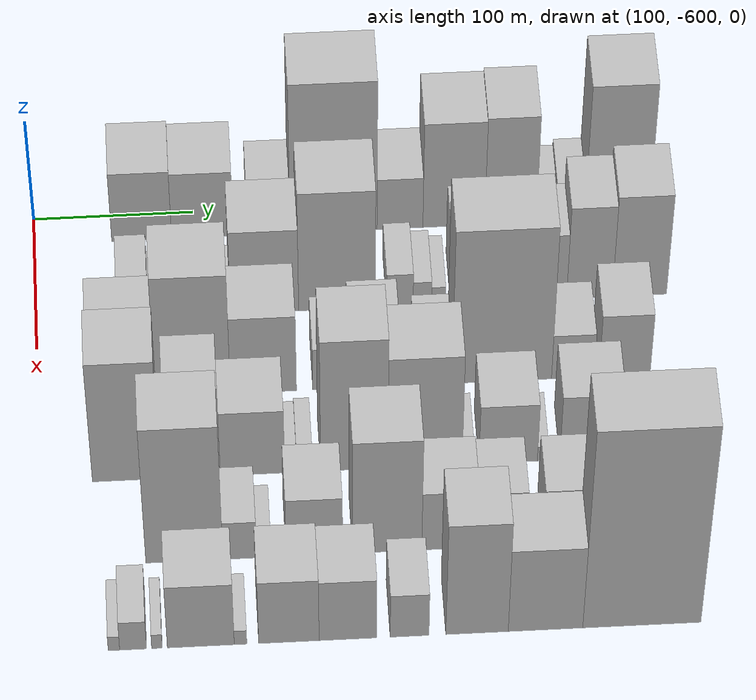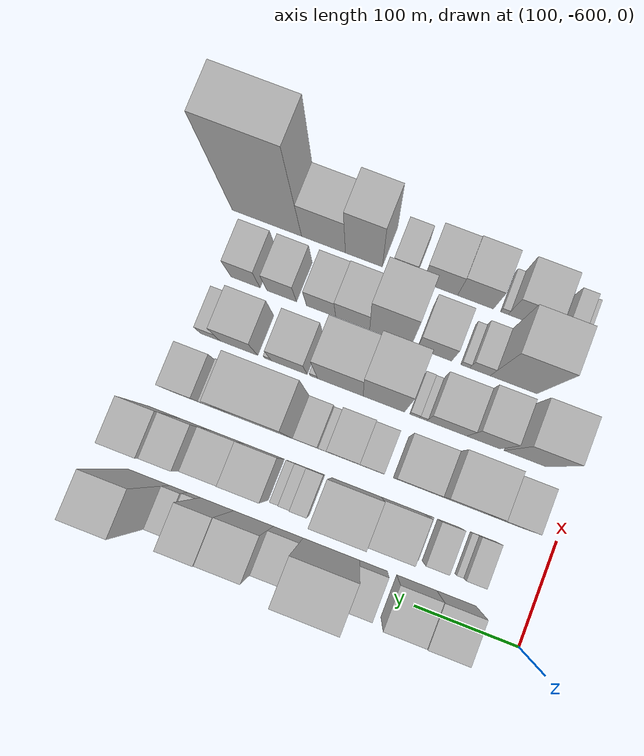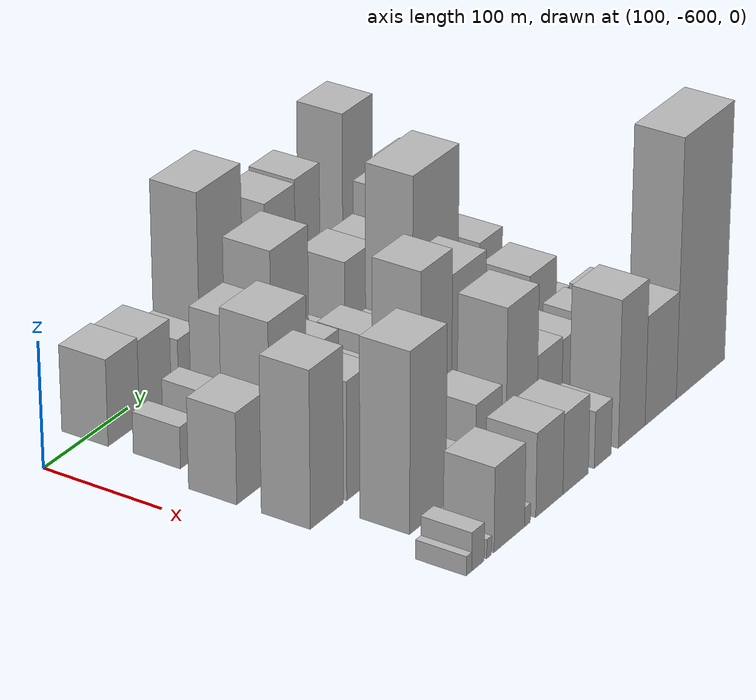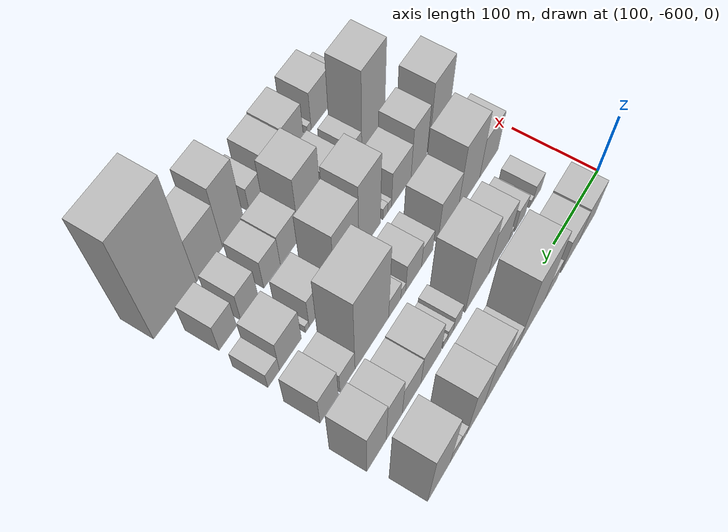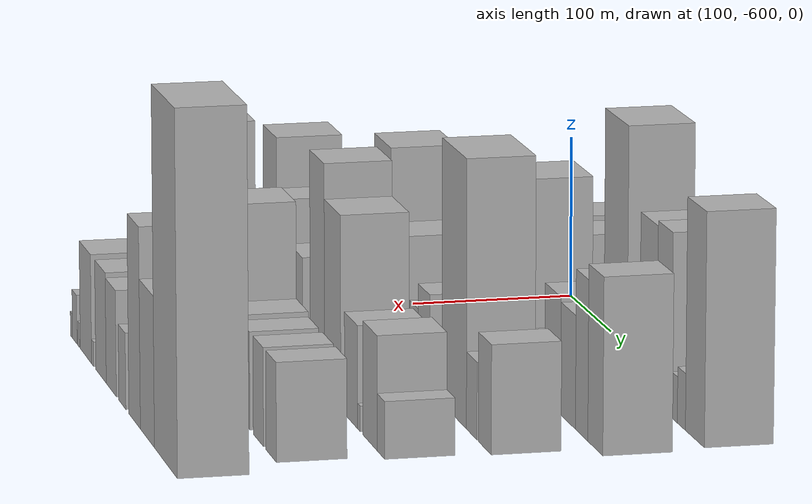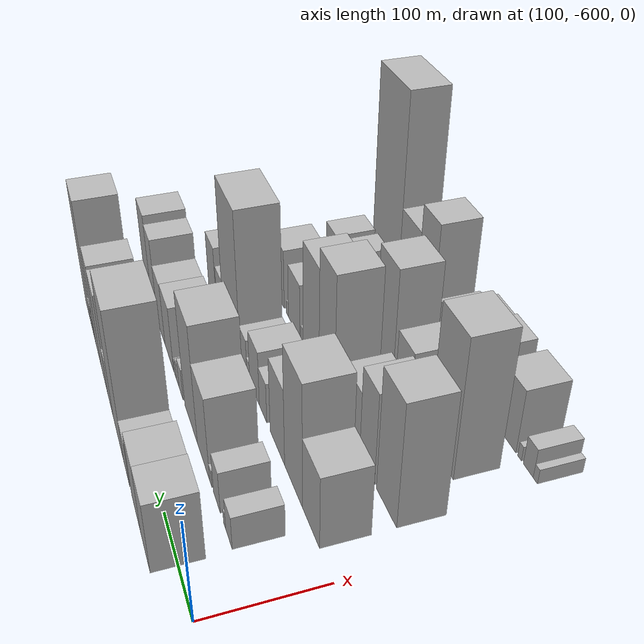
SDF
<sdf version="1.6">
 <world name="default">
  <model name="building_10">
   <static>1</static>
   <pose>100.0000 -532.8033 0 0.000000 0.000000 0.000000</pose>
   <link name="link">
    <pose>0 0 34.50 0 0 0</pose>
    <collision name="collision"><geometry><box><size>40.0000 37.5329 69.0000</size></box></geometry></collision>
    <visual name="visual">
     <cast_shadows>0</cast_shadows>
     <geometry><box><size>40.0000 37.5329 69.0000</size></box></geometry>
     <material>
      <script>
       <uri>model://HANNAS_wall/materials/scripts</uri>
       <uri>model://HANNAS_wall/materials/textures</uri>
       <name>vrc/HANNAS_wall</name>
      </script>
     </material>
    </visual>
   </link>
  </model>
  <model name="building_11">
   <static>1</static>
   <pose>100.0000 -494.6859 0 0.000000 0.000000 0.000000</pose>
   <link name="link">
    <pose>0 0 33.00 0 0 0</pose>
    <collision name="collision"><geometry><box><size>40.0000 38.7019 66.0000</size></box></geometry></collision>
    <visual name="visual">
     <cast_shadows>0</cast_shadows>
     <geometry><box><size>40.0000 38.7019 66.0000</size></box></geometry>
     <material>
      <script>
       <uri>model://HANNAS_wall/materials/scripts</uri>
       <uri>model://HANNAS_wall/materials/textures</uri>
       <name>vrc/HANNAS_wall</name>
      </script>
     </material>
    </visual>
   </link>
  </model>
  <model name="building_12">
   <static>1</static>
   <pose>100.0000 -452.9017 0 0.000000 0.000000 0.000000</pose>
   <link name="link">
    <pose>0 0 22.50 0 0 0</pose>
    <collision name="collision"><geometry><box><size>40.0000 26.8665 45.0000</size></box></geometry></collision>
    <visual name="visual">
     <cast_shadows>0</cast_shadows>
     <geometry><box><size>40.0000 26.8665 45.0000</size></box></geometry>
     <material>
      <script>
       <uri>model://HANNAS_wall/materials/scripts</uri>
       <uri>model://HANNAS_wall/materials/textures</uri>
       <name>vrc/HANNAS_wall</name>
      </script>
     </material>
    </visual>
   </link>
  </model>
  <model name="building_13">
   <static>1</static>
   <pose>100.0000 -412.1161 0 0.000000 0.000000 0.000000</pose>
   <link name="link">
    <pose>0 0 75.00 0 0 0</pose>
    <collision name="collision"><geometry><box><size>40.0000 54.7048 150.0000</size></box></geometry></collision>
    <visual name="visual">
     <cast_shadows>0</cast_shadows>
     <geometry><box><size>40.0000 54.7048 150.0000</size></box></geometry>
     <material>
      <script>
       <uri>model://HANNAS_wall/materials/scripts</uri>
       <uri>model://HANNAS_wall/materials/textures</uri>
       <name>vrc/HANNAS_wall</name>
      </script>
     </material>
    </visual>
   </link>
  </model>
  <model name="building_14">
   <static>1</static>
   <pose>100.0000 -370.3261 0 0.000000 0.000000 0.000000</pose>
   <link name="link">
    <pose>0 0 25.50 0 0 0</pose>
    <collision name="collision"><geometry><box><size>40.0000 28.8751 51.0000</size></box></geometry></collision>
    <visual name="visual">
     <cast_shadows>0</cast_shadows>
     <geometry><box><size>40.0000 28.8751 51.0000</size></box></geometry>
     <material>
      <script>
       <uri>model://HANNAS_wall/materials/scripts</uri>
       <uri>model://HANNAS_wall/materials/textures</uri>
       <name>vrc/HANNAS_wall</name>
      </script>
     </material>
    </visual>
   </link>
  </model>
  <model name="building_15">
   <static>1</static>
   <pose>100.0000 -336.4003 0 0.000000 0.000000 0.000000</pose>
   <link name="link">
    <pose>0 0 52.50 0 0 0</pose>
    <collision name="collision"><geometry><box><size>40.0000 38.9765 105.0000</size></box></geometry></collision>
    <visual name="visual">
     <cast_shadows>0</cast_shadows>
     <geometry><box><size>40.0000 38.9765 105.0000</size></box></geometry>
     <material>
      <script>
       <uri>model://HANNAS_wall/materials/scripts</uri>
       <uri>model://HANNAS_wall/materials/textures</uri>
       <name>vrc/HANNAS_wall</name>
      </script>
     </material>
    </visual>
   </link>
  </model>
  <model name="building_16">
   <static>1</static>
   <pose>100.0000 -300.6600 0 0.000000 0.000000 0.000000</pose>
   <link name="link">
    <pose>0 0 54.00 0 0 0</pose>
    <collision name="collision"><geometry><box><size>40.0000 32.5042 108.0000</size></box></geometry></collision>
    <visual name="visual">
     <cast_shadows>0</cast_shadows>
     <geometry><box><size>40.0000 32.5042 108.0000</size></box></geometry>
     <material>
      <script>
       <uri>model://HANNAS_wall/materials/scripts</uri>
       <uri>model://HANNAS_wall/materials/textures</uri>
       <name>vrc/HANNAS_wall</name>
      </script>
     </material>
    </visual>
   </link>
  </model>
  <model name="building_17">
   <static>1</static>
   <pose>100.0000 -278.0071 0 0.000000 0.000000 0.000000</pose>
   <link name="link">
    <pose>0 0 13.50 0 0 0</pose>
    <collision name="collision"><geometry><box><size>40.0000 12.8015 27.0000</size></box></geometry></collision>
    <visual name="visual">
     <cast_shadows>0</cast_shadows>
     <geometry><box><size>40.0000 12.8015 27.0000</size></box></geometry>
     <material>
      <script>
       <uri>model://HANNAS_wall/materials/scripts</uri>
       <uri>model://HANNAS_wall/materials/textures</uri>
       <name>vrc/HANNAS_wall</name>
      </script>
     </material>
    </visual>
   </link>
  </model>
  <model name="building_18">
   <static>1</static>
   <pose>100.0000 -262.7538 0 0.000000 0.000000 0.000000</pose>
   <link name="link">
    <pose>0 0 16.50 0 0 0</pose>
    <collision name="collision"><geometry><box><size>40.0000 17.7049 33.0000</size></box></geometry></collision>
    <visual name="visual">
     <cast_shadows>0</cast_shadows>
     <geometry><box><size>40.0000 17.7049 33.0000</size></box></geometry>
     <material>
      <script>
       <uri>model://HANNAS_wall/materials/scripts</uri>
       <uri>model://HANNAS_wall/materials/textures</uri>
       <name>vrc/HANNAS_wall</name>
      </script>
     </material>
    </visual>
   </link>
  </model>
  <model name="building_19">
   <static>1</static>
   <pose>100.0000 -233.5406 0 0.000000 0.000000 0.000000</pose>
   <link name="link">
    <pose>0 0 67.50 0 0 0</pose>
    <collision name="collision"><geometry><box><size>40.0000 40.7216 135.0000</size></box></geometry></collision>
    <visual name="visual">
     <cast_shadows>0</cast_shadows>
     <geometry><box><size>40.0000 40.7216 135.0000</size></box></geometry>
     <material>
      <script>
       <uri>model://HANNAS_wall/materials/scripts</uri>
       <uri>model://HANNAS_wall/materials/textures</uri>
       <name>vrc/HANNAS_wall</name>
      </script>
     </material>
    </visual>
   </link>
  </model>
  <model name="building_63">
   <static>1</static>
   <pose>160.0000 -539.8541 0 0.000000 0.000000 0.000000</pose>
   <link name="link">
    <pose>0 0 16.50 0 0 0</pose>
    <collision name="collision"><geometry><box><size>40.0000 19.1556 33.0000</size></box></geometry></collision>
    <visual name="visual">
     <cast_shadows>0</cast_shadows>
     <geometry><box><size>40.0000 19.1556 33.0000</size></box></geometry>
     <material>
      <script>
       <uri>model://HANNAS_wall/materials/scripts</uri>
       <uri>model://HANNAS_wall/materials/textures</uri>
       <name>vrc/HANNAS_wall</name>
      </script>
     </material>
    </visual>
   </link>
  </model>
  <model name="building_64">
   <static>1</static>
   <pose>160.0000 -527.0520 0 0.000000 0.000000 0.000000</pose>
   <link name="link">
    <pose>0 0 7.50 0 0 0</pose>
    <collision name="collision"><geometry><box><size>40.0000 6.4485 15.0000</size></box></geometry></collision>
    <visual name="visual">
     <cast_shadows>0</cast_shadows>
     <geometry><box><size>40.0000 6.4485 15.0000</size></box></geometry>
     <material>
      <script>
       <uri>model://HANNAS_wall/materials/scripts</uri>
       <uri>model://HANNAS_wall/materials/textures</uri>
       <name>vrc/HANNAS_wall</name>
      </script>
     </material>
    </visual>
   </link>
  </model>
  <model name="building_65">
   <static>1</static>
   <pose>160.0000 -503.0006 0 0.000000 0.000000 0.000000</pose>
   <link name="link">
    <pose>0 0 21.00 0 0 0</pose>
    <collision name="collision"><geometry><box><size>40.0000 21.6543 42.0000</size></box></geometry></collision>
    <visual name="visual">
     <cast_shadows>0</cast_shadows>
     <geometry><box><size>40.0000 21.6543 42.0000</size></box></geometry>
     <material>
      <script>
       <uri>model://HANNAS_wall/materials/scripts</uri>
       <uri>model://HANNAS_wall/materials/textures</uri>
       <name>vrc/HANNAS_wall</name>
      </script>
     </material>
    </visual>
   </link>
  </model>
  <model name="building_66">
   <static>1</static>
   <pose>160.0000 -483.2972 0 0.000000 0.000000 0.000000</pose>
   <link name="link">
    <pose>0 0 9.00 0 0 0</pose>
    <collision name="collision"><geometry><box><size>40.0000 7.7525 18.0000</size></box></geometry></collision>
    <visual name="visual">
     <cast_shadows>0</cast_shadows>
     <geometry><box><size>40.0000 7.7525 18.0000</size></box></geometry>
     <material>
      <script>
       <uri>model://HANNAS_wall/materials/scripts</uri>
       <uri>model://HANNAS_wall/materials/textures</uri>
       <name>vrc/HANNAS_wall</name>
      </script>
     </material>
    </visual>
   </link>
  </model>
  <model name="building_67">
   <static>1</static>
   <pose>160.0000 -458.2253 0 0.000000 0.000000 0.000000</pose>
   <link name="link">
    <pose>0 0 42.00 0 0 0</pose>
    <collision name="collision"><geometry><box><size>40.0000 42.3914 84.0000</size></box></geometry></collision>
    <visual name="visual">
     <cast_shadows>0</cast_shadows>
     <geometry><box><size>40.0000 42.3914 84.0000</size></box></geometry>
     <material>
      <script>
       <uri>model://HANNAS_wall/materials/scripts</uri>
       <uri>model://HANNAS_wall/materials/textures</uri>
       <name>vrc/HANNAS_wall</name>
      </script>
     </material>
    </visual>
   </link>
  </model>
  <model name="building_68">
   <static>1</static>
   <pose>160.0000 -413.1945 0 0.000000 0.000000 0.000000</pose>
   <link name="link">
    <pose>0 0 60.00 0 0 0</pose>
    <collision name="collision"><geometry><box><size>40.0000 47.6701 120.0000</size></box></geometry></collision>
    <visual name="visual">
     <cast_shadows>0</cast_shadows>
     <geometry><box><size>40.0000 47.6701 120.0000</size></box></geometry>
     <material>
      <script>
       <uri>model://HANNAS_wall/materials/scripts</uri>
       <uri>model://HANNAS_wall/materials/textures</uri>
       <name>vrc/HANNAS_wall</name>
      </script>
     </material>
    </visual>
   </link>
  </model>
  <model name="building_69">
   <static>1</static>
   <pose>160.0000 -374.0884 0 0.000000 0.000000 0.000000</pose>
   <link name="link">
    <pose>0 0 16.50 0 0 0</pose>
    <collision name="collision"><geometry><box><size>40.0000 16.5420 33.0000</size></box></geometry></collision>
    <visual name="visual">
     <cast_shadows>0</cast_shadows>
     <geometry><box><size>40.0000 16.5420 33.0000</size></box></geometry>
     <material>
      <script>
       <uri>model://HANNAS_wall/materials/scripts</uri>
       <uri>model://HANNAS_wall/materials/textures</uri>
       <name>vrc/HANNAS_wall</name>
      </script>
     </material>
    </visual>
   </link>
  </model>
  <model name="building_70">
   <static>1</static>
   <pose>160.0000 -360.0493 0 0.000000 0.000000 0.000000</pose>
   <link name="link">
    <pose>0 0 12.00 0 0 0</pose>
    <collision name="collision"><geometry><box><size>40.0000 11.5363 24.0000</size></box></geometry></collision>
    <visual name="visual">
     <cast_shadows>0</cast_shadows>
     <geometry><box><size>40.0000 11.5363 24.0000</size></box></geometry>
     <material>
      <script>
       <uri>model://HANNAS_wall/materials/scripts</uri>
       <uri>model://HANNAS_wall/materials/textures</uri>
       <name>vrc/HANNAS_wall</name>
      </script>
     </material>
    </visual>
   </link>
  </model>
  <model name="building_71">
   <static>1</static>
   <pose>160.0000 -349.9404 0 0.000000 0.000000 0.000000</pose>
   <link name="link">
    <pose>0 0 9.00 0 0 0</pose>
    <collision name="collision"><geometry><box><size>40.0000 8.6815 18.0000</size></box></geometry></collision>
    <visual name="visual">
     <cast_shadows>0</cast_shadows>
     <geometry><box><size>40.0000 8.6815 18.0000</size></box></geometry>
     <material>
      <script>
       <uri>model://HANNAS_wall/materials/scripts</uri>
       <uri>model://HANNAS_wall/materials/textures</uri>
       <name>vrc/HANNAS_wall</name>
      </script>
     </material>
    </visual>
   </link>
  </model>
  <model name="building_72">
   <static>1</static>
   <pose>160.0000 -323.5385 0 0.000000 0.000000 0.000000</pose>
   <link name="link">
    <pose>0 0 34.50 0 0 0</pose>
    <collision name="collision"><geometry><box><size>40.0000 38.1223 69.0000</size></box></geometry></collision>
    <visual name="visual">
     <cast_shadows>0</cast_shadows>
     <geometry><box><size>40.0000 38.1223 69.0000</size></box></geometry>
     <material>
      <script>
       <uri>model://HANNAS_wall/materials/scripts</uri>
       <uri>model://HANNAS_wall/materials/textures</uri>
       <name>vrc/HANNAS_wall</name>
      </script>
     </material>
    </visual>
   </link>
  </model>
  <model name="building_73">
   <static>1</static>
   <pose>160.0000 -287.3243 0 0.000000 0.000000 0.000000</pose>
   <link name="link">
    <pose>0 0 33.00 0 0 0</pose>
    <collision name="collision"><geometry><box><size>40.0000 34.3060 66.0000</size></box></geometry></collision>
    <visual name="visual">
     <cast_shadows>0</cast_shadows>
     <geometry><box><size>40.0000 34.3060 66.0000</size></box></geometry>
     <material>
      <script>
       <uri>model://HANNAS_wall/materials/scripts</uri>
       <uri>model://HANNAS_wall/materials/textures</uri>
       <name>vrc/HANNAS_wall</name>
      </script>
     </material>
    </visual>
   </link>
  </model>
  <model name="building_74">
   <static>1</static>
   <pose>160.0000 -255.9162 0 0.000000 0.000000 0.000000</pose>
   <link name="link">
    <pose>0 0 46.50 0 0 0</pose>
    <collision name="collision"><geometry><box><size>40.0000 28.5102 93.0000</size></box></geometry></collision>
    <visual name="visual">
     <cast_shadows>0</cast_shadows>
     <geometry><box><size>40.0000 28.5102 93.0000</size></box></geometry>
     <material>
      <script>
       <uri>model://HANNAS_wall/materials/scripts</uri>
       <uri>model://HANNAS_wall/materials/textures</uri>
       <name>vrc/HANNAS_wall</name>
      </script>
     </material>
    </visual>
   </link>
  </model>
  <model name="building_75">
   <static>1</static>
   <pose>160.0000 -224.6952 0 0.000000 0.000000 0.000000</pose>
   <link name="link">
    <pose>0 0 51.00 0 0 0</pose>
    <collision name="collision"><geometry><box><size>40.0000 33.9318 102.0000</size></box></geometry></collision>
    <visual name="visual">
     <cast_shadows>0</cast_shadows>
     <geometry><box><size>40.0000 33.9318 102.0000</size></box></geometry>
     <material>
      <script>
       <uri>model://HANNAS_wall/materials/scripts</uri>
       <uri>model://HANNAS_wall/materials/textures</uri>
       <name>vrc/HANNAS_wall</name>
      </script>
     </material>
    </visual>
   </link>
  </model>
  <model name="building_116">
   <static>1</static>
   <pose>220.0000 -548.0804 0 0.000000 0.000000 0.000000</pose>
   <link name="link">
    <pose>0 0 36.00 0 0 0</pose>
    <collision name="collision"><geometry><box><size>40.0000 40.2664 72.0000</size></box></geometry></collision>
    <visual name="visual">
     <cast_shadows>0</cast_shadows>
     <geometry><box><size>40.0000 40.2664 72.0000</size></box></geometry>
     <material>
      <script>
       <uri>model://HANNAS_wall/materials/scripts</uri>
       <uri>model://HANNAS_wall/materials/textures</uri>
       <name>vrc/HANNAS_wall</name>
      </script>
     </material>
    </visual>
   </link>
  </model>
  <model name="building_117">
   <static>1</static>
   <pose>220.0000 -504.9321 0 0.000000 0.000000 0.000000</pose>
   <link name="link">
    <pose>0 0 61.50 0 0 0</pose>
    <collision name="collision"><geometry><box><size>40.0000 46.0302 123.0000</size></box></geometry></collision>
    <visual name="visual">
     <cast_shadows>0</cast_shadows>
     <geometry><box><size>40.0000 46.0302 123.0000</size></box></geometry>
     <material>
      <script>
       <uri>model://HANNAS_wall/materials/scripts</uri>
       <uri>model://HANNAS_wall/materials/textures</uri>
       <name>vrc/HANNAS_wall</name>
      </script>
     </material>
    </visual>
   </link>
  </model>
  <model name="building_118">
   <static>1</static>
   <pose>220.0000 -461.6140 0 0.000000 0.000000 0.000000</pose>
   <link name="link">
    <pose>0 0 39.00 0 0 0</pose>
    <collision name="collision"><geometry><box><size>40.0000 40.6060 78.0000</size></box></geometry></collision>
    <visual name="visual">
     <cast_shadows>0</cast_shadows>
     <geometry><box><size>40.0000 40.6060 78.0000</size></box></geometry>
     <material>
      <script>
       <uri>model://HANNAS_wall/materials/scripts</uri>
       <uri>model://HANNAS_wall/materials/textures</uri>
       <name>vrc/HANNAS_wall</name>
      </script>
     </material>
    </visual>
   </link>
  </model>
  <model name="building_119">
   <static>1</static>
   <pose>220.0000 -419.9575 0 0.000000 0.000000 0.000000</pose>
   <link name="link">
    <pose>0 0 21.00 0 0 0</pose>
    <collision name="collision"><geometry><box><size>40.0000 22.7069 42.0000</size></box></geometry></collision>
    <visual name="visual">
     <cast_shadows>0</cast_shadows>
     <geometry><box><size>40.0000 22.7069 42.0000</size></box></geometry>
     <material>
      <script>
       <uri>model://HANNAS_wall/materials/scripts</uri>
       <uri>model://HANNAS_wall/materials/textures</uri>
       <name>vrc/HANNAS_wall</name>
      </script>
     </material>
    </visual>
   </link>
  </model>
  <model name="building_120">
   <static>1</static>
   <pose>220.0000 -393.2647 0 0.000000 0.000000 0.000000</pose>
   <link name="link">
    <pose>0 0 28.50 0 0 0</pose>
    <collision name="collision"><geometry><box><size>40.0000 30.6788 57.0000</size></box></geometry></collision>
    <visual name="visual">
     <cast_shadows>0</cast_shadows>
     <geometry><box><size>40.0000 30.6788 57.0000</size></box></geometry>
     <material>
      <script>
       <uri>model://HANNAS_wall/materials/scripts</uri>
       <uri>model://HANNAS_wall/materials/textures</uri>
       <name>vrc/HANNAS_wall</name>
      </script>
     </material>
    </visual>
   </link>
  </model>
  <model name="building_121">
   <static>1</static>
   <pose>220.0000 -373.2873 0 0.000000 0.000000 0.000000</pose>
   <link name="link">
    <pose>0 0 10.50 0 0 0</pose>
    <collision name="collision"><geometry><box><size>40.0000 9.2759 21.0000</size></box></geometry></collision>
    <visual name="visual">
     <cast_shadows>0</cast_shadows>
     <geometry><box><size>40.0000 9.2759 21.0000</size></box></geometry>
     <material>
      <script>
       <uri>model://HANNAS_wall/materials/scripts</uri>
       <uri>model://HANNAS_wall/materials/textures</uri>
       <name>vrc/HANNAS_wall</name>
      </script>
     </material>
    </visual>
   </link>
  </model>
  <model name="building_122">
   <static>1</static>
   <pose>220.0000 -357.1830 0 0.000000 0.000000 0.000000</pose>
   <link name="link">
    <pose>0 0 19.50 0 0 0</pose>
    <collision name="collision"><geometry><box><size>40.0000 22.9327 39.0000</size></box></geometry></collision>
    <visual name="visual">
     <cast_shadows>0</cast_shadows>
     <geometry><box><size>40.0000 22.9327 39.0000</size></box></geometry>
     <material>
      <script>
       <uri>model://HANNAS_wall/materials/scripts</uri>
       <uri>model://HANNAS_wall/materials/textures</uri>
       <name>vrc/HANNAS_wall</name>
      </script>
     </material>
    </visual>
   </link>
  </model>
  <model name="building_123">
   <static>1</static>
   <pose>220.0000 -315.0364 0 0.000000 0.000000 0.000000</pose>
   <link name="link">
    <pose>0 0 78.00 0 0 0</pose>
    <collision name="collision"><geometry><box><size>40.0000 61.3605 156.0000</size></box></geometry></collision>
    <visual name="visual">
     <cast_shadows>0</cast_shadows>
     <geometry><box><size>40.0000 61.3605 156.0000</size></box></geometry>
     <material>
      <script>
       <uri>model://HANNAS_wall/materials/scripts</uri>
       <uri>model://HANNAS_wall/materials/textures</uri>
       <name>vrc/HANNAS_wall</name>
      </script>
     </material>
    </visual>
   </link>
  </model>
  <model name="building_124">
   <static>1</static>
   <pose>220.0000 -271.2228 0 0.000000 0.000000 0.000000</pose>
   <link name="link">
    <pose>0 0 22.50 0 0 0</pose>
    <collision name="collision"><geometry><box><size>40.0000 26.2666 45.0000</size></box></geometry></collision>
    <visual name="visual">
     <cast_shadows>0</cast_shadows>
     <geometry><box><size>40.0000 26.2666 45.0000</size></box></geometry>
     <material>
      <script>
       <uri>model://HANNAS_wall/materials/scripts</uri>
       <uri>model://HANNAS_wall/materials/textures</uri>
       <name>vrc/HANNAS_wall</name>
      </script>
     </material>
    </visual>
   </link>
  </model>
  <model name="building_125">
   <static>1</static>
   <pose>220.0000 -239.2941 0 0.000000 0.000000 0.000000</pose>
   <link name="link">
    <pose>0 0 31.50 0 0 0</pose>
    <collision name="collision"><geometry><box><size>40.0000 31.5907 63.0000</size></box></geometry></collision>
    <visual name="visual">
     <cast_shadows>0</cast_shadows>
     <geometry><box><size>40.0000 31.5907 63.0000</size></box></geometry>
     <material>
      <script>
       <uri>model://HANNAS_wall/materials/scripts</uri>
       <uri>model://HANNAS_wall/materials/textures</uri>
       <name>vrc/HANNAS_wall</name>
      </script>
     </material>
    </visual>
   </link>
  </model>
  <model name="building_172">
   <static>1</static>
   <pose>280.0000 -547.5031 0 0.000000 0.000000 0.000000</pose>
   <link name="link">
    <pose>0 0 61.50 0 0 0</pose>
    <collision name="collision"><geometry><box><size>40.0000 40.8445 123.0000</size></box></geometry></collision>
    <visual name="visual">
     <cast_shadows>0</cast_shadows>
     <geometry><box><size>40.0000 40.8445 123.0000</size></box></geometry>
     <material>
      <script>
       <uri>model://HANNAS_wall/materials/scripts</uri>
       <uri>model://HANNAS_wall/materials/textures</uri>
       <name>vrc/HANNAS_wall</name>
      </script>
     </material>
    </visual>
   </link>
  </model>
  <model name="building_173">
   <static>1</static>
   <pose>280.0000 -506.7807 0 0.000000 0.000000 0.000000</pose>
   <link name="link">
    <pose>0 0 46.50 0 0 0</pose>
    <collision name="collision"><geometry><box><size>40.0000 32.6004 93.0000</size></box></geometry></collision>
    <visual name="visual">
     <cast_shadows>0</cast_shadows>
     <geometry><box><size>40.0000 32.6004 93.0000</size></box></geometry>
     <material>
      <script>
       <uri>model://HANNAS_wall/materials/scripts</uri>
       <uri>model://HANNAS_wall/materials/textures</uri>
       <name>vrc/HANNAS_wall</name>
      </script>
     </material>
    </visual>
   </link>
  </model>
  <model name="building_174">
   <static>1</static>
   <pose>280.0000 -470.9668 0 0.000000 0.000000 0.000000</pose>
   <link name="link">
    <pose>0 0 33.00 0 0 0</pose>
    <collision name="collision"><geometry><box><size>40.0000 39.0274 66.0000</size></box></geometry></collision>
    <visual name="visual">
     <cast_shadows>0</cast_shadows>
     <geometry><box><size>40.0000 39.0274 66.0000</size></box></geometry>
     <material>
      <script>
       <uri>model://HANNAS_wall/materials/scripts</uri>
       <uri>model://HANNAS_wall/materials/textures</uri>
       <name>vrc/HANNAS_wall</name>
      </script>
     </material>
    </visual>
   </link>
  </model>
  <model name="building_175">
   <static>1</static>
   <pose>280.0000 -447.7701 0 0.000000 0.000000 0.000000</pose>
   <link name="link">
    <pose>0 0 9.00 0 0 0</pose>
    <collision name="collision"><geometry><box><size>40.0000 7.3662 18.0000</size></box></geometry></collision>
    <visual name="visual">
     <cast_shadows>0</cast_shadows>
     <geometry><box><size>40.0000 7.3662 18.0000</size></box></geometry>
     <material>
      <script>
       <uri>model://HANNAS_wall/materials/scripts</uri>
       <uri>model://HANNAS_wall/materials/textures</uri>
       <name>vrc/HANNAS_wall</name>
      </script>
     </material>
    </visual>
   </link>
  </model>
  <model name="building_176">
   <static>1</static>
   <pose>280.0000 -439.3183 0 0.000000 0.000000 0.000000</pose>
   <link name="link">
    <pose>0 0 10.50 0 0 0</pose>
    <collision name="collision"><geometry><box><size>40.0000 9.5373 21.0000</size></box></geometry></collision>
    <visual name="visual">
     <cast_shadows>0</cast_shadows>
     <geometry><box><size>40.0000 9.5373 21.0000</size></box></geometry>
     <material>
      <script>
       <uri>model://HANNAS_wall/materials/scripts</uri>
       <uri>model://HANNAS_wall/materials/textures</uri>
       <name>vrc/HANNAS_wall</name>
      </script>
     </material>
    </visual>
   </link>
  </model>
  <model name="building_177">
   <static>1</static>
   <pose>280.0000 -409.1166 0 0.000000 0.000000 0.000000</pose>
   <link name="link">
    <pose>0 0 67.50 0 0 0</pose>
    <collision name="collision"><geometry><box><size>40.0000 40.8661 135.0000</size></box></geometry></collision>
    <visual name="visual">
     <cast_shadows>0</cast_shadows>
     <geometry><box><size>40.0000 40.8661 135.0000</size></box></geometry>
     <material>
      <script>
       <uri>model://HANNAS_wall/materials/scripts</uri>
       <uri>model://HANNAS_wall/materials/textures</uri>
       <name>vrc/HANNAS_wall</name>
      </script>
     </material>
    </visual>
   </link>
  </model>
  <model name="building_178">
   <static>1</static>
   <pose>280.0000 -366.1663 0 0.000000 0.000000 0.000000</pose>
   <link name="link">
    <pose>0 0 57.00 0 0 0</pose>
    <collision name="collision"><geometry><box><size>40.0000 45.0344 114.0000</size></box></geometry></collision>
    <visual name="visual">
     <cast_shadows>0</cast_shadows>
     <geometry><box><size>40.0000 45.0344 114.0000</size></box></geometry>
     <material>
      <script>
       <uri>model://HANNAS_wall/materials/scripts</uri>
       <uri>model://HANNAS_wall/materials/textures</uri>
       <name>vrc/HANNAS_wall</name>
      </script>
     </material>
    </visual>
   </link>
  </model>
  <model name="building_179">
   <static>1</static>
   <pose>280.0000 -340.0058 0 0.000000 0.000000 0.000000</pose>
   <link name="link">
    <pose>0 0 9.00 0 0 0</pose>
    <collision name="collision"><geometry><box><size>40.0000 7.2867 18.0000</size></box></geometry></collision>
    <visual name="visual">
     <cast_shadows>0</cast_shadows>
     <geometry><box><size>40.0000 7.2867 18.0000</size></box></geometry>
     <material>
      <script>
       <uri>model://HANNAS_wall/materials/scripts</uri>
       <uri>model://HANNAS_wall/materials/textures</uri>
       <name>vrc/HANNAS_wall</name>
      </script>
     </material>
    </visual>
   </link>
  </model>
  <model name="building_180">
   <static>1</static>
   <pose>280.0000 -315.5818 0 0.000000 0.000000 0.000000</pose>
   <link name="link">
    <pose>0 0 30.00 0 0 0</pose>
    <collision name="collision"><geometry><box><size>40.0000 35.5613 60.0000</size></box></geometry></collision>
    <visual name="visual">
     <cast_shadows>0</cast_shadows>
     <geometry><box><size>40.0000 35.5613 60.0000</size></box></geometry>
     <material>
      <script>
       <uri>model://HANNAS_wall/materials/scripts</uri>
       <uri>model://HANNAS_wall/materials/textures</uri>
       <name>vrc/HANNAS_wall</name>
      </script>
     </material>
    </visual>
   </link>
  </model>
  <model name="building_181">
   <static>1</static>
   <pose>280.0000 -294.4740 0 0.000000 0.000000 0.000000</pose>
   <link name="link">
    <pose>0 0 7.50 0 0 0</pose>
    <collision name="collision"><geometry><box><size>40.0000 6.6544 15.0000</size></box></geometry></collision>
    <visual name="visual">
     <cast_shadows>0</cast_shadows>
     <geometry><box><size>40.0000 6.6544 15.0000</size></box></geometry>
     <material>
      <script>
       <uri>model://HANNAS_wall/materials/scripts</uri>
       <uri>model://HANNAS_wall/materials/textures</uri>
       <name>vrc/HANNAS_wall</name>
      </script>
     </material>
    </visual>
   </link>
  </model>
  <model name="building_182">
   <static>1</static>
   <pose>280.0000 -265.3051 0 0.000000 0.000000 0.000000</pose>
   <link name="link">
    <pose>0 0 33.00 0 0 0</pose>
    <collision name="collision"><geometry><box><size>40.0000 37.6833 66.0000</size></box></geometry></collision>
    <visual name="visual">
     <cast_shadows>0</cast_shadows>
     <geometry><box><size>40.0000 37.6833 66.0000</size></box></geometry>
     <material>
      <script>
       <uri>model://HANNAS_wall/materials/scripts</uri>
       <uri>model://HANNAS_wall/materials/textures</uri>
       <name>vrc/HANNAS_wall</name>
      </script>
     </material>
    </visual>
   </link>
  </model>
  <model name="building_183">
   <static>1</static>
   <pose>280.0000 -236.6613 0 0.000000 0.000000 0.000000</pose>
   <link name="link">
    <pose>0 0 16.50 0 0 0</pose>
    <collision name="collision"><geometry><box><size>40.0000 19.6044 33.0000</size></box></geometry></collision>
    <visual name="visual">
     <cast_shadows>0</cast_shadows>
     <geometry><box><size>40.0000 19.6044 33.0000</size></box></geometry>
     <material>
      <script>
       <uri>model://HANNAS_wall/materials/scripts</uri>
       <uri>model://HANNAS_wall/materials/textures</uri>
       <name>vrc/HANNAS_wall</name>
      </script>
     </material>
    </visual>
   </link>
  </model>
  <model name="building_228">
   <static>1</static>
   <pose>340.0000 -514.3351 0 0.000000 0.000000 0.000000</pose>
   <link name="link">
    <pose>0 0 70.50 0 0 0</pose>
    <collision name="collision"><geometry><box><size>40.0000 46.0710 141.0000</size></box></geometry></collision>
    <visual name="visual">
     <cast_shadows>0</cast_shadows>
     <geometry><box><size>40.0000 46.0710 141.0000</size></box></geometry>
     <material>
      <script>
       <uri>model://HANNAS_wall/materials/scripts</uri>
       <uri>model://HANNAS_wall/materials/textures</uri>
       <name>vrc/HANNAS_wall</name>
      </script>
     </material>
    </visual>
   </link>
  </model>
  <model name="building_229">
   <static>1</static>
   <pose>340.0000 -481.2095 0 0.000000 0.000000 0.000000</pose>
   <link name="link">
    <pose>0 0 19.50 0 0 0</pose>
    <collision name="collision"><geometry><box><size>40.0000 20.1802 39.0000</size></box></geometry></collision>
    <visual name="visual">
     <cast_shadows>0</cast_shadows>
     <geometry><box><size>40.0000 20.1802 39.0000</size></box></geometry>
     <material>
      <script>
       <uri>model://HANNAS_wall/materials/scripts</uri>
       <uri>model://HANNAS_wall/materials/textures</uri>
       <name>vrc/HANNAS_wall</name>
      </script>
     </material>
    </visual>
   </link>
  </model>
  <model name="building_230">
   <static>1</static>
   <pose>340.0000 -466.7261 0 0.000000 0.000000 0.000000</pose>
   <link name="link">
    <pose>0 0 9.00 0 0 0</pose>
    <collision name="collision"><geometry><box><size>40.0000 8.7867 18.0000</size></box></geometry></collision>
    <visual name="visual">
     <cast_shadows>0</cast_shadows>
     <geometry><box><size>40.0000 8.7867 18.0000</size></box></geometry>
     <material>
      <script>
       <uri>model://HANNAS_wall/materials/scripts</uri>
       <uri>model://HANNAS_wall/materials/textures</uri>
       <name>vrc/HANNAS_wall</name>
      </script>
     </material>
    </visual>
   </link>
  </model>
  <model name="building_231">
   <static>1</static>
   <pose>340.0000 -436.4053 0 0.000000 0.000000 0.000000</pose>
   <link name="link">
    <pose>0 0 30.00 0 0 0</pose>
    <collision name="collision"><geometry><box><size>40.0000 33.8547 60.0000</size></box></geometry></collision>
    <visual name="visual">
     <cast_shadows>0</cast_shadows>
     <geometry><box><size>40.0000 33.8547 60.0000</size></box></geometry>
     <material>
      <script>
       <uri>model://HANNAS_wall/materials/scripts</uri>
       <uri>model://HANNAS_wall/materials/textures</uri>
       <name>vrc/HANNAS_wall</name>
      </script>
     </material>
    </visual>
   </link>
  </model>
  <model name="building_232">
   <static>1</static>
   <pose>340.0000 -392.7424 0 0.000000 0.000000 0.000000</pose>
   <link name="link">
    <pose>0 0 58.50 0 0 0</pose>
    <collision name="collision"><geometry><box><size>40.0000 41.4712 117.0000</size></box></geometry></collision>
    <visual name="visual">
     <cast_shadows>0</cast_shadows>
     <geometry><box><size>40.0000 41.4712 117.0000</size></box></geometry>
     <material>
      <script>
       <uri>model://HANNAS_wall/materials/scripts</uri>
       <uri>model://HANNAS_wall/materials/textures</uri>
       <name>vrc/HANNAS_wall</name>
      </script>
     </material>
    </visual>
   </link>
  </model>
  <model name="building_233">
   <static>1</static>
   <pose>340.0000 -355.0733 0 0.000000 0.000000 0.000000</pose>
   <link name="link">
    <pose>0 0 30.00 0 0 0</pose>
    <collision name="collision"><geometry><box><size>40.0000 33.8669 60.0000</size></box></geometry></collision>
    <visual name="visual">
     <cast_shadows>0</cast_shadows>
     <geometry><box><size>40.0000 33.8669 60.0000</size></box></geometry>
     <material>
      <script>
       <uri>model://HANNAS_wall/materials/scripts</uri>
       <uri>model://HANNAS_wall/materials/textures</uri>
       <name>vrc/HANNAS_wall</name>
      </script>
     </material>
    </visual>
   </link>
  </model>
  <model name="building_234">
   <static>1</static>
   <pose>340.0000 -323.5468 0 0.000000 0.000000 0.000000</pose>
   <link name="link">
    <pose>0 0 28.50 0 0 0</pose>
    <collision name="collision"><geometry><box><size>40.0000 29.1862 57.0000</size></box></geometry></collision>
    <visual name="visual">
     <cast_shadows>0</cast_shadows>
     <geometry><box><size>40.0000 29.1862 57.0000</size></box></geometry>
     <material>
      <script>
       <uri>model://HANNAS_wall/materials/scripts</uri>
       <uri>model://HANNAS_wall/materials/textures</uri>
       <name>vrc/HANNAS_wall</name>
      </script>
     </material>
    </visual>
   </link>
  </model>
  <model name="building_235">
   <static>1</static>
   <pose>340.0000 -284.1666 0 0.000000 0.000000 0.000000</pose>
   <link name="link">
    <pose>0 0 28.50 0 0 0</pose>
    <collision name="collision"><geometry><box><size>40.0000 29.5743 57.0000</size></box></geometry></collision>
    <visual name="visual">
     <cast_shadows>0</cast_shadows>
     <geometry><box><size>40.0000 29.5743 57.0000</size></box></geometry>
     <material>
      <script>
       <uri>model://HANNAS_wall/materials/scripts</uri>
       <uri>model://HANNAS_wall/materials/textures</uri>
       <name>vrc/HANNAS_wall</name>
      </script>
     </material>
    </visual>
   </link>
  </model>
  <model name="building_236">
   <static>1</static>
   <pose>340.0000 -247.7034 0 0.000000 0.000000 0.000000</pose>
   <link name="link">
    <pose>0 0 28.50 0 0 0</pose>
    <collision name="collision"><geometry><box><size>40.0000 29.3521 57.0000</size></box></geometry></collision>
    <visual name="visual">
     <cast_shadows>0</cast_shadows>
     <geometry><box><size>40.0000 29.3521 57.0000</size></box></geometry>
     <material>
      <script>
       <uri>model://HANNAS_wall/materials/scripts</uri>
       <uri>model://HANNAS_wall/materials/textures</uri>
       <name>vrc/HANNAS_wall</name>
      </script>
     </material>
    </visual>
   </link>
  </model>
  <model name="building_285">
   <static>1</static>
   <pose>400.0000 -558.0753 0 0.000000 0.000000 0.000000</pose>
   <link name="link">
    <pose>0 0 7.50 0 0 0</pose>
    <collision name="collision"><geometry><box><size>40.0000 6.7598 15.0000</size></box></geometry></collision>
    <visual name="visual">
     <cast_shadows>0</cast_shadows>
     <geometry><box><size>40.0000 6.7598 15.0000</size></box></geometry>
     <material>
      <script>
       <uri>model://HANNAS_wall/materials/scripts</uri>
       <uri>model://HANNAS_wall/materials/textures</uri>
       <name>vrc/HANNAS_wall</name>
      </script>
     </material>
    </visual>
   </link>
  </model>
  <model name="building_286">
   <static>1</static>
   <pose>400.0000 -546.7310 0 0.000000 0.000000 0.000000</pose>
   <link name="link">
    <pose>0 0 15.00 0 0 0</pose>
    <collision name="collision"><geometry><box><size>40.0000 15.9287 30.0000</size></box></geometry></collision>
    <visual name="visual">
     <cast_shadows>0</cast_shadows>
     <geometry><box><size>40.0000 15.9287 30.0000</size></box></geometry>
     <material>
      <script>
       <uri>model://HANNAS_wall/materials/scripts</uri>
       <uri>model://HANNAS_wall/materials/textures</uri>
       <name>vrc/HANNAS_wall</name>
      </script>
     </material>
    </visual>
   </link>
  </model>
  <model name="building_287">
   <static>1</static>
   <pose>400.0000 -532.6439 0 0.000000 0.000000 0.000000</pose>
   <link name="link">
    <pose>0 0 7.50 0 0 0</pose>
    <collision name="collision"><geometry><box><size>40.0000 6.2454 15.0000</size></box></geometry></collision>
    <visual name="visual">
     <cast_shadows>0</cast_shadows>
     <geometry><box><size>40.0000 6.2454 15.0000</size></box></geometry>
     <material>
      <script>
       <uri>model://HANNAS_wall/materials/scripts</uri>
       <uri>model://HANNAS_wall/materials/textures</uri>
       <name>vrc/HANNAS_wall</name>
      </script>
     </material>
    </visual>
   </link>
  </model>
  <model name="building_288">
   <static>1</static>
   <pose>400.0000 -506.7398 0 0.000000 0.000000 0.000000</pose>
   <link name="link">
    <pose>0 0 33.00 0 0 0</pose>
    <collision name="collision"><geometry><box><size>40.0000 39.5628 66.0000</size></box></geometry></collision>
    <visual name="visual">
     <cast_shadows>0</cast_shadows>
     <geometry><box><size>40.0000 39.5628 66.0000</size></box></geometry>
     <material>
      <script>
       <uri>model://HANNAS_wall/materials/scripts</uri>
       <uri>model://HANNAS_wall/materials/textures</uri>
       <name>vrc/HANNAS_wall</name>
      </script>
     </material>
    </visual>
   </link>
  </model>
  <model name="building_289">
   <static>1</static>
   <pose>400.0000 -483.2209 0 0.000000 0.000000 0.000000</pose>
   <link name="link">
    <pose>0 0 7.50 0 0 0</pose>
    <collision name="collision"><geometry><box><size>40.0000 7.4750 15.0000</size></box></geometry></collision>
    <visual name="visual">
     <cast_shadows>0</cast_shadows>
     <geometry><box><size>40.0000 7.4750 15.0000</size></box></geometry>
     <material>
      <script>
       <uri>model://HANNAS_wall/materials/scripts</uri>
       <uri>model://HANNAS_wall/materials/textures</uri>
       <name>vrc/HANNAS_wall</name>
      </script>
     </material>
    </visual>
   </link>
  </model>
  <model name="building_290">
   <static>1</static>
   <pose>400.0000 -454.5969 0 0.000000 0.000000 0.000000</pose>
   <link name="link">
    <pose>0 0 33.00 0 0 0</pose>
    <collision name="collision"><geometry><box><size>40.0000 35.7730 66.0000</size></box></geometry></collision>
    <visual name="visual">
     <cast_shadows>0</cast_shadows>
     <geometry><box><size>40.0000 35.7730 66.0000</size></box></geometry>
     <material>
      <script>
       <uri>model://HANNAS_wall/materials/scripts</uri>
       <uri>model://HANNAS_wall/materials/textures</uri>
       <name>vrc/HANNAS_wall</name>
      </script>
     </material>
    </visual>
   </link>
  </model>
  <model name="building_291">
   <static>1</static>
   <pose>400.0000 -419.6434 0 0.000000 0.000000 0.000000</pose>
   <link name="link">
    <pose>0 0 31.50 0 0 0</pose>
    <collision name="collision"><geometry><box><size>40.0000 34.1340 63.0000</size></box></geometry></collision>
    <visual name="visual">
     <cast_shadows>0</cast_shadows>
     <geometry><box><size>40.0000 34.1340 63.0000</size></box></geometry>
     <material>
      <script>
       <uri>model://HANNAS_wall/materials/scripts</uri>
       <uri>model://HANNAS_wall/materials/textures</uri>
       <name>vrc/HANNAS_wall</name>
      </script>
     </material>
    </visual>
   </link>
  </model>
  <model name="building_292">
   <static>1</static>
   <pose>400.0000 -383.0667 0 0.000000 0.000000 0.000000</pose>
   <link name="link">
    <pose>0 0 22.50 0 0 0</pose>
    <collision name="collision"><geometry><box><size>40.0000 23.0194 45.0000</size></box></geometry></collision>
    <visual name="visual">
     <cast_shadows>0</cast_shadows>
     <geometry><box><size>40.0000 23.0194 45.0000</size></box></geometry>
     <material>
      <script>
       <uri>model://HANNAS_wall/materials/scripts</uri>
       <uri>model://HANNAS_wall/materials/textures</uri>
       <name>vrc/HANNAS_wall</name>
      </script>
     </material>
    </visual>
   </link>
  </model>
  <model name="building_293">
   <static>1</static>
   <pose>400.0000 -343.0241 0 0.000000 0.000000 0.000000</pose>
   <link name="link">
    <pose>0 0 58.50 0 0 0</pose>
    <collision name="collision"><geometry><box><size>40.0000 37.0656 117.0000</size></box></geometry></collision>
    <visual name="visual">
     <cast_shadows>0</cast_shadows>
     <geometry><box><size>40.0000 37.0656 117.0000</size></box></geometry>
     <material>
      <script>
       <uri>model://HANNAS_wall/materials/scripts</uri>
       <uri>model://HANNAS_wall/materials/textures</uri>
       <name>vrc/HANNAS_wall</name>
      </script>
     </material>
    </visual>
   </link>
  </model>
  <model name="building_294">
   <static>1</static>
   <pose>400.0000 -302.3486 0 0.000000 0.000000 0.000000</pose>
   <link name="link">
    <pose>0 0 43.50 0 0 0</pose>
    <collision name="collision"><geometry><box><size>40.0000 44.2853 87.0000</size></box></geometry></collision>
    <visual name="visual">
     <cast_shadows>0</cast_shadows>
     <geometry><box><size>40.0000 44.2853 87.0000</size></box></geometry>
     <material>
      <script>
       <uri>model://HANNAS_wall/materials/scripts</uri>
       <uri>model://HANNAS_wall/materials/textures</uri>
       <name>vrc/HANNAS_wall</name>
      </script>
     </material>
    </visual>
   </link>
  </model>
  <model name="building_295">
   <static>1</static>
   <pose>400.0000 -245.0734 0 0.000000 0.000000 0.000000</pose>
   <link name="link">
    <pose>0 0 103.50 0 0 0</pose>
    <collision name="collision"><geometry><box><size>40.0000 70.2652 207.0000</size></box></geometry></collision>
    <visual name="visual">
     <cast_shadows>0</cast_shadows>
     <geometry><box><size>40.0000 70.2652 207.0000</size></box></geometry>
     <material>
      <script>
       <uri>model://HANNAS_wall/materials/scripts</uri>
       <uri>model://HANNAS_wall/materials/textures</uri>
       <name>vrc/HANNAS_wall</name>
      </script>
     </material>
    </visual>
   </link>
  </model>
 </world>
</sdf>
